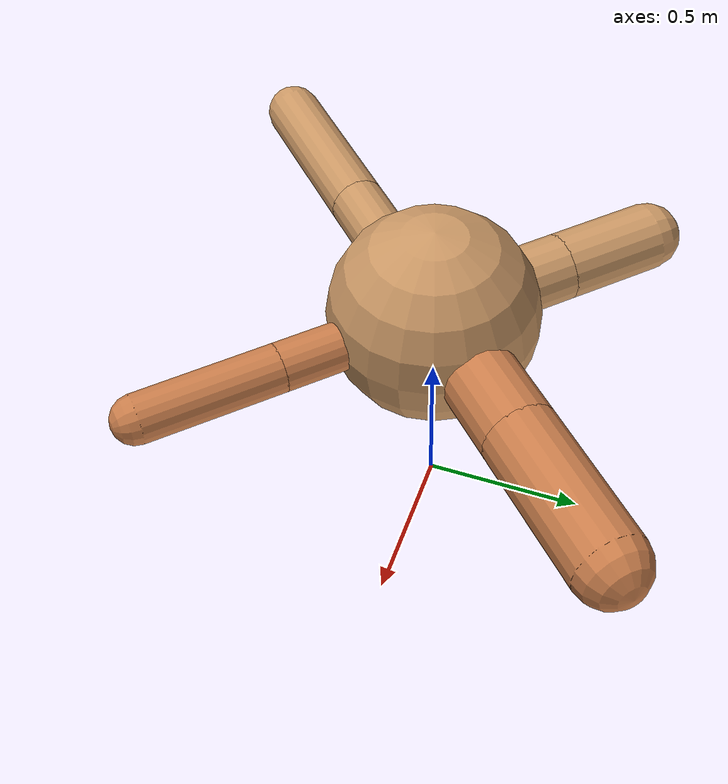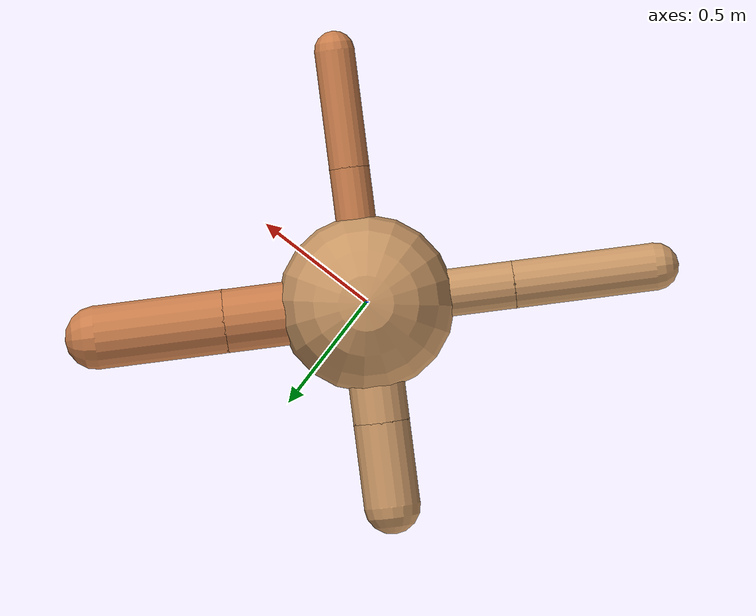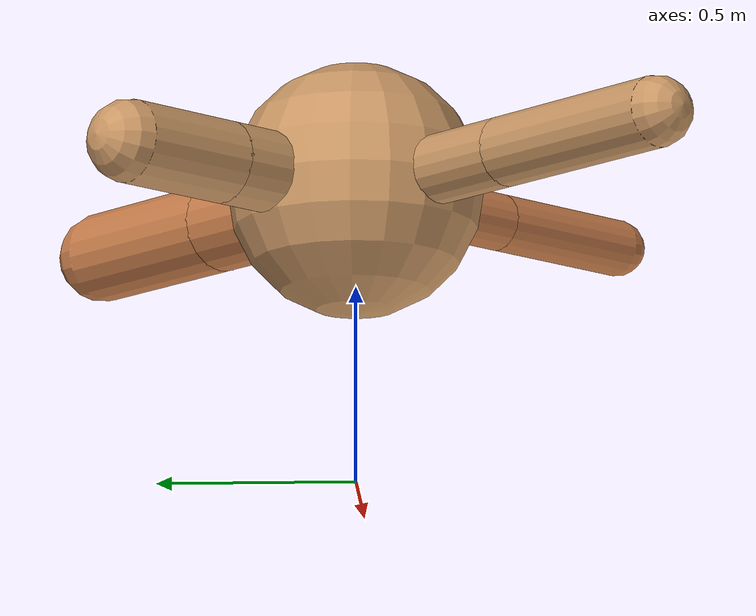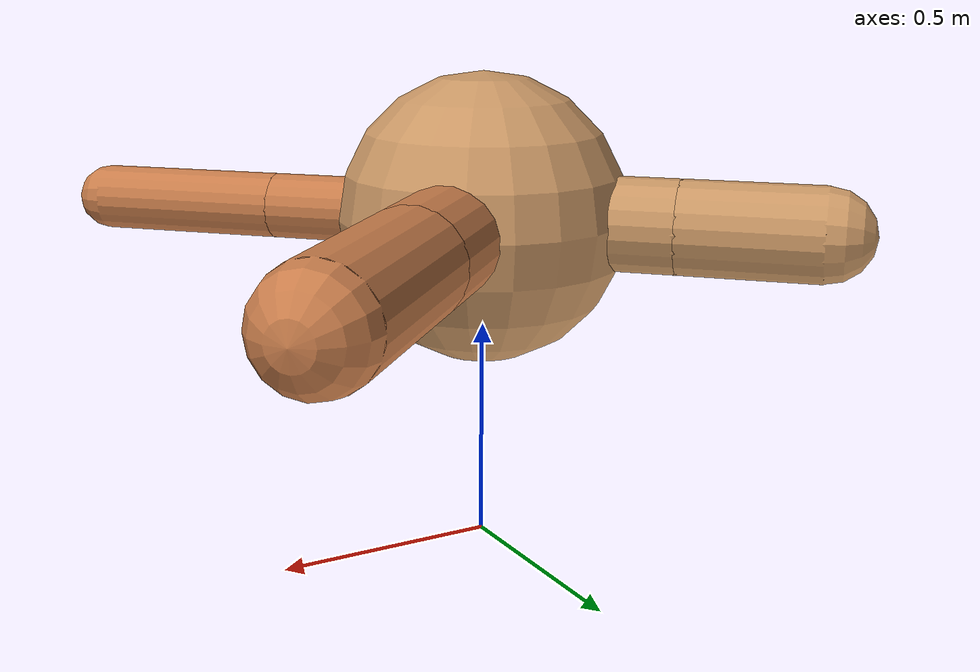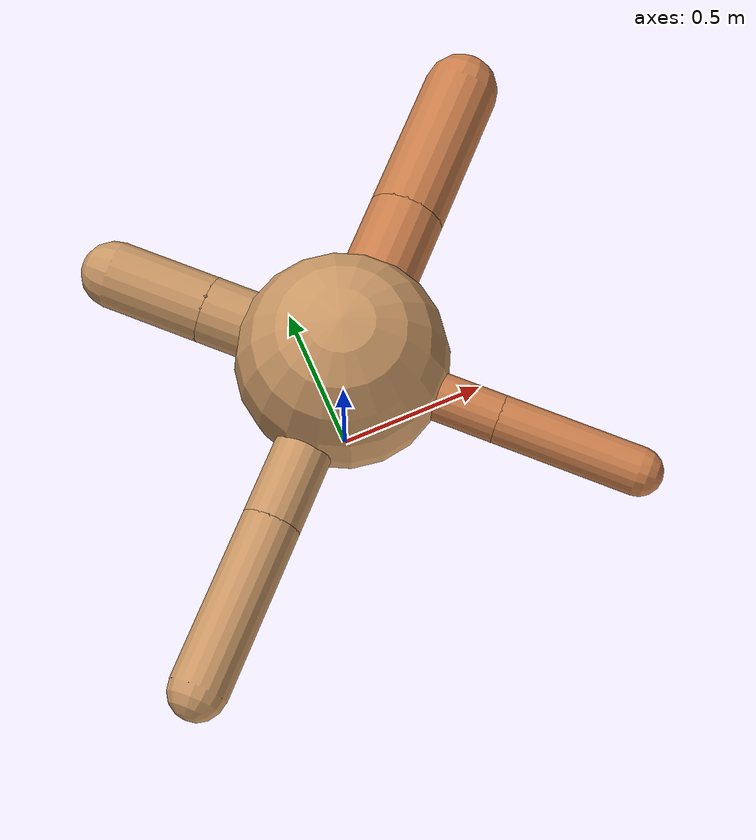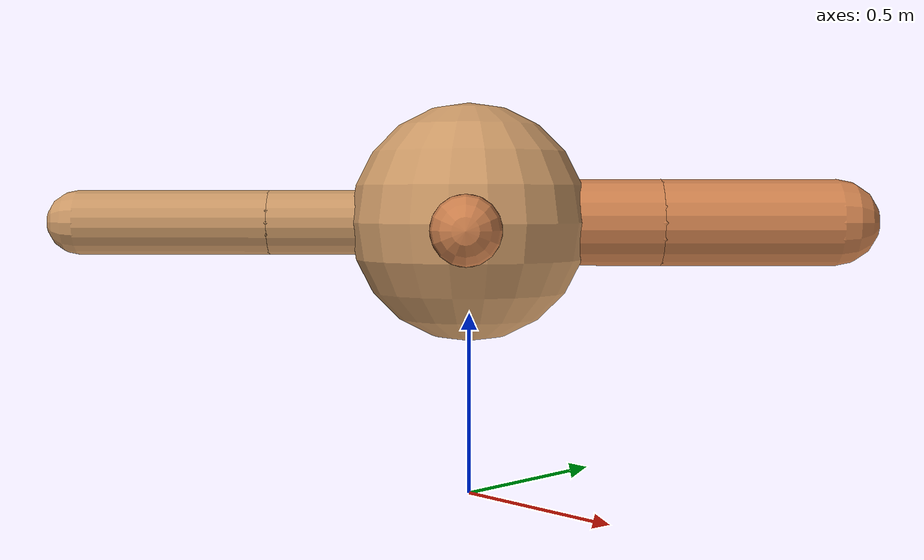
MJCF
<?xml version="1.0" ?>
<mujoco model="ant">

	<compiler angle="degree" coordinate="local" inertiafromgeom="true"/>

	<option integrator="RK4" timestep="0.01"/>

	<custom>

		<numeric data="0.0 0.0 0.55 1.0 0.0 0.0 0.0 0.0 1.0 0.0 -1.0 0.0 -1.0 0.0 1.0" name="init_qpos"/>

	</custom>

	<default>

		<joint armature="1" damping="1" limited="true"/>

		<geom conaffinity="0" condim="3" density="5.0" friction="1.5 0.1 0.1" margin="0.01" rgba="0.8 0.6 0.4 1"/>

	</default>

	<worldbody>

		<body name="torso" pos="0 0 0.75">

			<geom name="torso_geom" pos="0 0 0" size="0.3245525887263981" type="sphere"/>

			<!--joint armature="0" damping="0" limited="false" margin="0.01" name="root" pos="0 0 0" type="free"/-->

			<body name="front_left_leg" pos="0 0 0">

				<geom fromto="0 0 0 0.2 0.2 0" name="aux_1_geom" size="0.1179809970159134" type="capsule" rgba=".8 .5 .3 1"/>

				<body name="aux_1" pos="0.2 0.2 0">

					<joint axis="0 0 1" name="hip_1" pos="0.0 0.0 0.0" range="-40 40" type="hinge"/>

					<geom fromto="0 0 0 0.1681055393045776 0.1681055393045776 0" name="left_leg_geom" size="0.1179809970159134" type="capsule" rgba=".8 .5 .3 1"/>

					<body pos="0.1681055393045776 0.1681055393045776 0" name="front_left_foot">

						<joint axis="-1 1 0" name="ankle_1" pos="0.0 0.0 0.0" range="30 100" type="hinge"/>

						<geom fromto="0 0 0 0.3362110786091552 0.3362110786091552 0" name="left_ankle_geom" size="0.1179809970159134" type="capsule" rgba=".8 .5 .3 1"/>

					</body>

				</body>

			</body>

			<body name="front_right_leg" pos="0 0 0">

				<geom fromto="0 0 0 -0.2 0.2 0" name="aux_2_geom" size="0.10447652792005091" type="capsule"/>

				<body name="aux_2" pos="-0.2 0.2 0">

					<joint axis="0 0 1" name="hip_2" pos="0.0 0.0 0.0" range="-40 40" type="hinge"/>

					<geom fromto="0 0 0 -0.10976469820454393 0.10976469820454393 0" name="right_leg_geom" size="0.10447652792005091" type="capsule"/>

					<body pos="-0.10976469820454393 0.10976469820454393 0" name="front_right_foot">

						<joint axis="1 1 0" name="ankle_2" pos="0.0 0.0 0.0" range="-100 -30" type="hinge"/>

						<geom fromto="0 0 0 -0.21952939640908786 0.21952939640908786 0" name="right_ankle_geom" size="0.10447652792005091" type="capsule"/>

					</body>

				</body>

			</body>

			<body name="left_back_leg" pos="0 0 0">

				<geom fromto="0 0 0 -0.2 -0.2 0" name="aux_3_geom" size="0.0881276526897744" type="capsule"/>

				<body name="aux_3" pos="-0.2 -0.2 0">

					<joint axis="0 0 1" name="hip_3" pos="0.0 0.0 0.0" range="-40 40" type="hinge"/>

					<geom fromto="0 0 0 -0.18454283508298713 -0.18454283508298713 0" name="back_leg_geom" size="0.0881276526897744" type="capsule"/>

					<body pos="-0.18454283508298713 -0.18454283508298713 0" name="left_back_foot">

						<joint axis="-1 1 0" name="ankle_3" pos="0.0 0.0 0.0" range="-100 -30" type="hinge"/>

						<geom fromto="0 0 0 -0.36908567016597427 -0.36908567016597427 0" name="third_ankle_geom" size="0.0881276526897744" type="capsule"/>

					</body>

				</body>

			</body>

			<body name="right_back_leg" pos="0 0 0">

				<geom fromto="0 0 0 0.2 -0.2 0" name="aux_4_geom" size="0.0744542904234905" type="capsule" rgba=".8 .5 .3 1"/>

				<body name="aux_4" pos="0.2 -0.2 0">

					<joint axis="0 0 1" name="hip_4" pos="0.0 0.0 0.0" range="-40 40" type="hinge"/>

					<geom fromto="0 0 0 0.15303762656136227 -0.15303762656136227 0" name="rightback_leg_geom" size="0.0744542904234905" type="capsule" rgba=".8 .5 .3 1"/>

					<body pos="0.15303762656136227 -0.15303762656136227 0" name="right_back_foot">

						<joint axis="1 1 0" name="ankle_4" pos="0.0 0.0 0.0" range="30 100" type="hinge"/>

						<geom fromto="0 0 0 0.30607525312272454 -0.30607525312272454 0" name="fourth_ankle_geom" size="0.0744542904234905" type="capsule" rgba=".8 .5 .3 1"/>

					</body>

				</body>

			</body>

		</body>

	</worldbody>

	<actuator>

		<motor ctrllimited="true" ctrlrange="-1.0 1.0" joint="hip_4" gear="150"/>

		<motor ctrllimited="true" ctrlrange="-1.0 1.0" joint="ankle_4" gear="150"/>

		<motor ctrllimited="true" ctrlrange="-1.0 1.0" joint="hip_1" gear="150"/>

		<motor ctrllimited="true" ctrlrange="-1.0 1.0" joint="ankle_1" gear="150"/>

		<motor ctrllimited="true" ctrlrange="-1.0 1.0" joint="hip_2" gear="150"/>

		<motor ctrllimited="true" ctrlrange="-1.0 1.0" joint="ankle_2" gear="150"/>

		<motor ctrllimited="true" ctrlrange="-1.0 1.0" joint="hip_3" gear="150"/>

		<motor ctrllimited="true" ctrlrange="-1.0 1.0" joint="ankle_3" gear="150"/>

	</actuator>

</mujoco>
